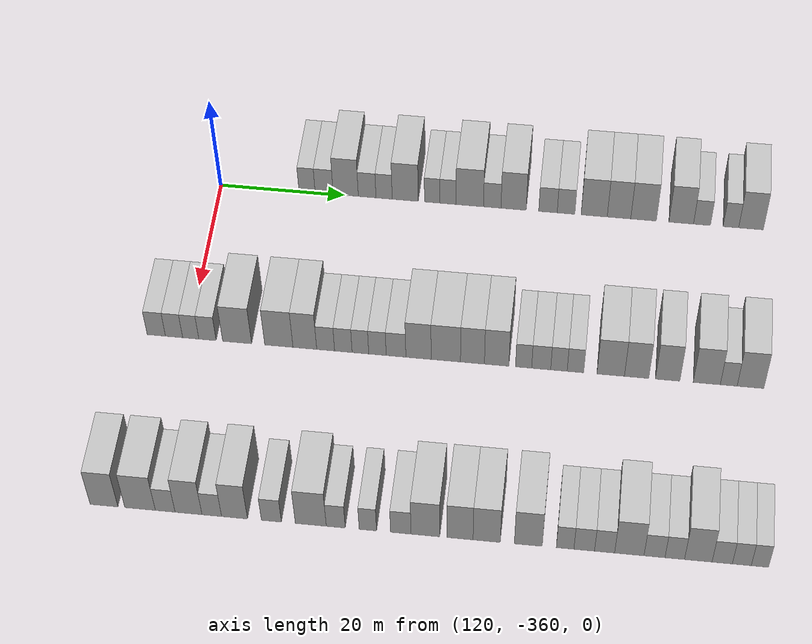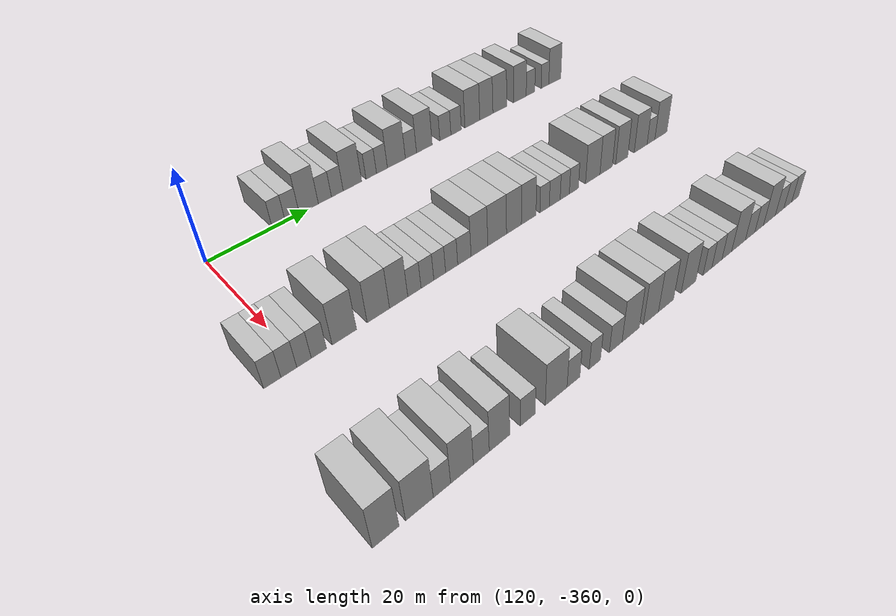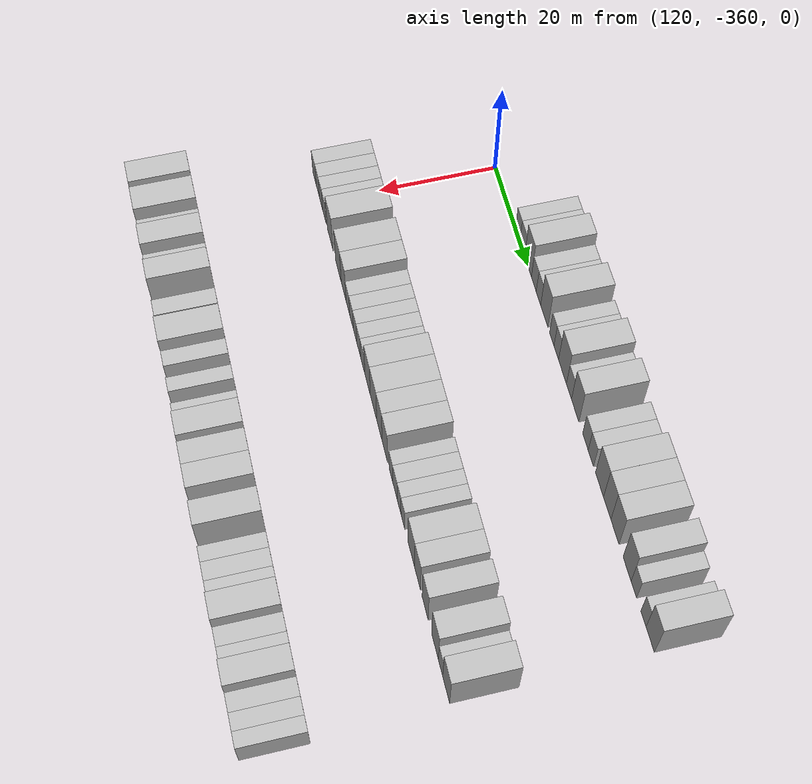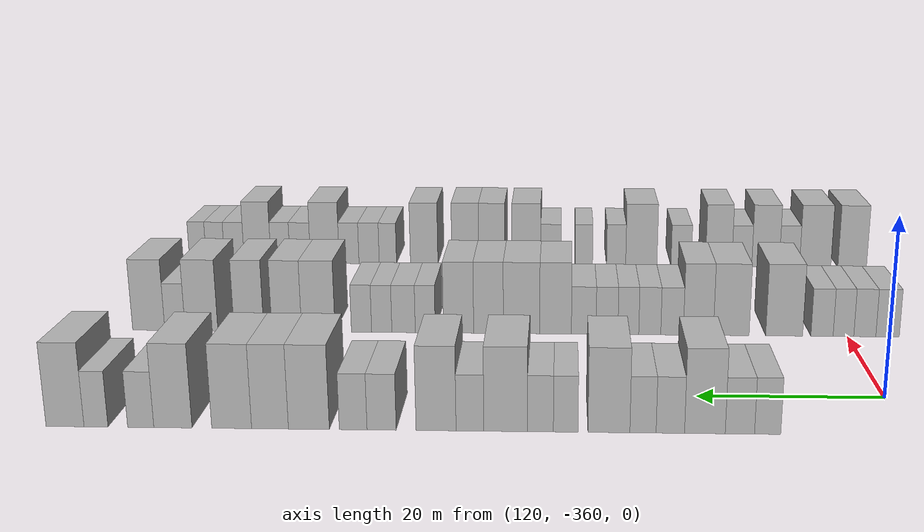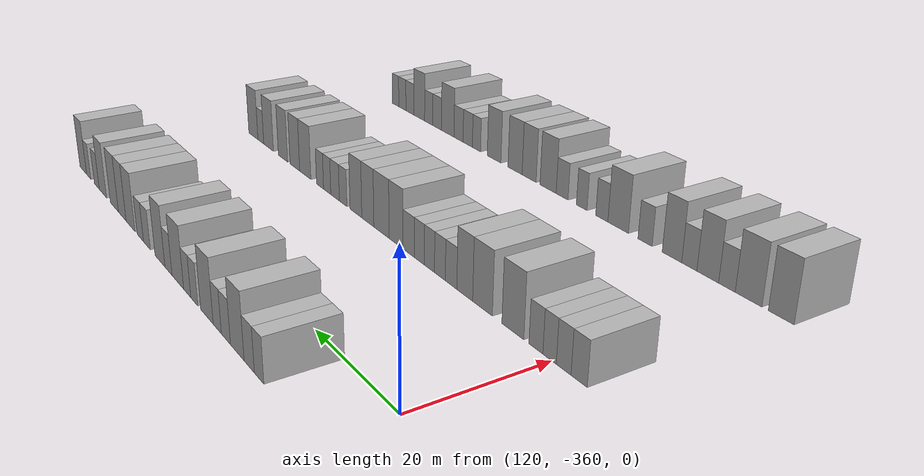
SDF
<sdf version="1.6">
 <world name="default">
  <model name="building_709">
   <static>1</static>
   <pose>115.0000 -346.1007 0 0.000000 0.000000 0.000000</pose>
   <link name="link">
    <pose>0 0 3.00 0 0 0</pose>
    <collision name="collision"><geometry><box><size>10.0000 2.6089 6.0000</size></box></geometry></collision>
    <visual name="visual">
     <cast_shadows>0</cast_shadows>
     <geometry><box><size>10.0000 2.6089 6.0000</size></box></geometry>
     <material>
      <script>
       <uri>model://HANNAS_wall/materials/scripts</uri>
       <uri>model://HANNAS_wall/materials/textures</uri>
       <name>vrc/HANNAS_wall</name>
      </script>
     </material>
    </visual>
   </link>
  </model>
  <model name="building_710">
   <static>1</static>
   <pose>115.0000 -343.3391 0 0.000000 0.000000 0.000000</pose>
   <link name="link">
    <pose>0 0 3.00 0 0 0</pose>
    <collision name="collision"><geometry><box><size>10.0000 2.9144 6.0000</size></box></geometry></collision>
    <visual name="visual">
     <cast_shadows>0</cast_shadows>
     <geometry><box><size>10.0000 2.9144 6.0000</size></box></geometry>
     <material>
      <script>
       <uri>model://HANNAS_wall/materials/scripts</uri>
       <uri>model://HANNAS_wall/materials/textures</uri>
       <name>vrc/HANNAS_wall</name>
      </script>
     </material>
    </visual>
   </link>
  </model>
  <model name="building_711">
   <static>1</static>
   <pose>115.0000 -339.8553 0 0.000000 0.000000 0.000000</pose>
   <link name="link">
    <pose>0 0 4.50 0 0 0</pose>
    <collision name="collision"><geometry><box><size>10.0000 4.0534 9.0000</size></box></geometry></collision>
    <visual name="visual">
     <cast_shadows>0</cast_shadows>
     <geometry><box><size>10.0000 4.0534 9.0000</size></box></geometry>
     <material>
      <script>
       <uri>model://HANNAS_wall/materials/scripts</uri>
       <uri>model://HANNAS_wall/materials/textures</uri>
       <name>vrc/HANNAS_wall</name>
      </script>
     </material>
    </visual>
   </link>
  </model>
  <model name="building_712">
   <static>1</static>
   <pose>115.0000 -336.4097 0 0.000000 0.000000 0.000000</pose>
   <link name="link">
    <pose>0 0 3.00 0 0 0</pose>
    <collision name="collision"><geometry><box><size>10.0000 2.8378 6.0000</size></box></geometry></collision>
    <visual name="visual">
     <cast_shadows>0</cast_shadows>
     <geometry><box><size>10.0000 2.8378 6.0000</size></box></geometry>
     <material>
      <script>
       <uri>model://HANNAS_wall/materials/scripts</uri>
       <uri>model://HANNAS_wall/materials/textures</uri>
       <name>vrc/HANNAS_wall</name>
      </script>
     </material>
    </visual>
   </link>
  </model>
  <model name="building_713">
   <static>1</static>
   <pose>115.0000 -333.6820 0 0.000000 0.000000 0.000000</pose>
   <link name="link">
    <pose>0 0 3.00 0 0 0</pose>
    <collision name="collision"><geometry><box><size>10.0000 2.6175 6.0000</size></box></geometry></collision>
    <visual name="visual">
     <cast_shadows>0</cast_shadows>
     <geometry><box><size>10.0000 2.6175 6.0000</size></box></geometry>
     <material>
      <script>
       <uri>model://HANNAS_wall/materials/scripts</uri>
       <uri>model://HANNAS_wall/materials/textures</uri>
       <name>vrc/HANNAS_wall</name>
      </script>
     </material>
    </visual>
   </link>
  </model>
  <model name="building_714">
   <static>1</static>
   <pose>115.0000 -330.2794 0 0.000000 0.000000 0.000000</pose>
   <link name="link">
    <pose>0 0 4.50 0 0 0</pose>
    <collision name="collision"><geometry><box><size>10.0000 4.1876 9.0000</size></box></geometry></collision>
    <visual name="visual">
     <cast_shadows>0</cast_shadows>
     <geometry><box><size>10.0000 4.1876 9.0000</size></box></geometry>
     <material>
      <script>
       <uri>model://HANNAS_wall/materials/scripts</uri>
       <uri>model://HANNAS_wall/materials/textures</uri>
       <name>vrc/HANNAS_wall</name>
      </script>
     </material>
    </visual>
   </link>
  </model>
  <model name="building_715">
   <static>1</static>
   <pose>115.0000 -325.9522 0 0.000000 0.000000 0.000000</pose>
   <link name="link">
    <pose>0 0 3.00 0 0 0</pose>
    <collision name="collision"><geometry><box><size>10.0000 2.4670 6.0000</size></box></geometry></collision>
    <visual name="visual">
     <cast_shadows>0</cast_shadows>
     <geometry><box><size>10.0000 2.4670 6.0000</size></box></geometry>
     <material>
      <script>
       <uri>model://HANNAS_wall/materials/scripts</uri>
       <uri>model://HANNAS_wall/materials/textures</uri>
       <name>vrc/HANNAS_wall</name>
      </script>
     </material>
    </visual>
   </link>
  </model>
  <model name="building_716">
   <static>1</static>
   <pose>115.0000 -323.4235 0 0.000000 0.000000 0.000000</pose>
   <link name="link">
    <pose>0 0 3.00 0 0 0</pose>
    <collision name="collision"><geometry><box><size>10.0000 2.5903 6.0000</size></box></geometry></collision>
    <visual name="visual">
     <cast_shadows>0</cast_shadows>
     <geometry><box><size>10.0000 2.5903 6.0000</size></box></geometry>
     <material>
      <script>
       <uri>model://HANNAS_wall/materials/scripts</uri>
       <uri>model://HANNAS_wall/materials/textures</uri>
       <name>vrc/HANNAS_wall</name>
      </script>
     </material>
    </visual>
   </link>
  </model>
  <model name="building_717">
   <static>1</static>
   <pose>115.0000 -319.9358 0 0.000000 0.000000 0.000000</pose>
   <link name="link">
    <pose>0 0 4.50 0 0 0</pose>
    <collision name="collision"><geometry><box><size>10.0000 4.3851 9.0000</size></box></geometry></collision>
    <visual name="visual">
     <cast_shadows>0</cast_shadows>
     <geometry><box><size>10.0000 4.3851 9.0000</size></box></geometry>
     <material>
      <script>
       <uri>model://HANNAS_wall/materials/scripts</uri>
       <uri>model://HANNAS_wall/materials/textures</uri>
       <name>vrc/HANNAS_wall</name>
      </script>
     </material>
    </visual>
   </link>
  </model>
  <model name="building_718">
   <static>1</static>
   <pose>115.0000 -316.3467 0 0.000000 0.000000 0.000000</pose>
   <link name="link">
    <pose>0 0 3.00 0 0 0</pose>
    <collision name="collision"><geometry><box><size>10.0000 2.7930 6.0000</size></box></geometry></collision>
    <visual name="visual">
     <cast_shadows>0</cast_shadows>
     <geometry><box><size>10.0000 2.7930 6.0000</size></box></geometry>
     <material>
      <script>
       <uri>model://HANNAS_wall/materials/scripts</uri>
       <uri>model://HANNAS_wall/materials/textures</uri>
       <name>vrc/HANNAS_wall</name>
      </script>
     </material>
    </visual>
   </link>
  </model>
  <model name="building_719">
   <static>1</static>
   <pose>115.0000 -312.9369 0 0.000000 0.000000 0.000000</pose>
   <link name="link">
    <pose>0 0 4.50 0 0 0</pose>
    <collision name="collision"><geometry><box><size>10.0000 4.0266 9.0000</size></box></geometry></collision>
    <visual name="visual">
     <cast_shadows>0</cast_shadows>
     <geometry><box><size>10.0000 4.0266 9.0000</size></box></geometry>
     <material>
      <script>
       <uri>model://HANNAS_wall/materials/scripts</uri>
       <uri>model://HANNAS_wall/materials/textures</uri>
       <name>vrc/HANNAS_wall</name>
      </script>
     </material>
    </visual>
   </link>
  </model>
  <model name="building_720">
   <static>1</static>
   <pose>115.0000 -307.4509 0 0.000000 0.000000 0.000000</pose>
   <link name="link">
    <pose>0 0 3.00 0 0 0</pose>
    <collision name="collision"><geometry><box><size>10.0000 2.9455 6.0000</size></box></geometry></collision>
    <visual name="visual">
     <cast_shadows>0</cast_shadows>
     <geometry><box><size>10.0000 2.9455 6.0000</size></box></geometry>
     <material>
      <script>
       <uri>model://HANNAS_wall/materials/scripts</uri>
       <uri>model://HANNAS_wall/materials/textures</uri>
       <name>vrc/HANNAS_wall</name>
      </script>
     </material>
    </visual>
   </link>
  </model>
  <model name="building_721">
   <static>1</static>
   <pose>115.0000 -304.5764 0 0.000000 0.000000 0.000000</pose>
   <link name="link">
    <pose>0 0 3.00 0 0 0</pose>
    <collision name="collision"><geometry><box><size>10.0000 2.8035 6.0000</size></box></geometry></collision>
    <visual name="visual">
     <cast_shadows>0</cast_shadows>
     <geometry><box><size>10.0000 2.8035 6.0000</size></box></geometry>
     <material>
      <script>
       <uri>model://HANNAS_wall/materials/scripts</uri>
       <uri>model://HANNAS_wall/materials/textures</uri>
       <name>vrc/HANNAS_wall</name>
      </script>
     </material>
    </visual>
   </link>
  </model>
  <model name="building_722">
   <static>1</static>
   <pose>115.0000 -300.1030 0 0.000000 0.000000 0.000000</pose>
   <link name="link">
    <pose>0 0 4.50 0 0 0</pose>
    <collision name="collision"><geometry><box><size>10.0000 4.1432 9.0000</size></box></geometry></collision>
    <visual name="visual">
     <cast_shadows>0</cast_shadows>
     <geometry><box><size>10.0000 4.1432 9.0000</size></box></geometry>
     <material>
      <script>
       <uri>model://HANNAS_wall/materials/scripts</uri>
       <uri>model://HANNAS_wall/materials/textures</uri>
       <name>vrc/HANNAS_wall</name>
      </script>
     </material>
    </visual>
   </link>
  </model>
  <model name="building_723">
   <static>1</static>
   <pose>115.0000 -296.1657 0 0.000000 0.000000 0.000000</pose>
   <link name="link">
    <pose>0 0 4.50 0 0 0</pose>
    <collision name="collision"><geometry><box><size>10.0000 3.7313 9.0000</size></box></geometry></collision>
    <visual name="visual">
     <cast_shadows>0</cast_shadows>
     <geometry><box><size>10.0000 3.7313 9.0000</size></box></geometry>
     <material>
      <script>
       <uri>model://HANNAS_wall/materials/scripts</uri>
       <uri>model://HANNAS_wall/materials/textures</uri>
       <name>vrc/HANNAS_wall</name>
      </script>
     </material>
    </visual>
   </link>
  </model>
  <model name="building_724">
   <static>1</static>
   <pose>115.0000 -292.2771 0 0.000000 0.000000 0.000000</pose>
   <link name="link">
    <pose>0 0 4.50 0 0 0</pose>
    <collision name="collision"><geometry><box><size>10.0000 4.0459 9.0000</size></box></geometry></collision>
    <visual name="visual">
     <cast_shadows>0</cast_shadows>
     <geometry><box><size>10.0000 4.0459 9.0000</size></box></geometry>
     <material>
      <script>
       <uri>model://HANNAS_wall/materials/scripts</uri>
       <uri>model://HANNAS_wall/materials/textures</uri>
       <name>vrc/HANNAS_wall</name>
      </script>
     </material>
    </visual>
   </link>
  </model>
  <model name="building_725">
   <static>1</static>
   <pose>115.0000 -286.3093 0 0.000000 0.000000 0.000000</pose>
   <link name="link">
    <pose>0 0 4.50 0 0 0</pose>
    <collision name="collision"><geometry><box><size>10.0000 3.8897 9.0000</size></box></geometry></collision>
    <visual name="visual">
     <cast_shadows>0</cast_shadows>
     <geometry><box><size>10.0000 3.8897 9.0000</size></box></geometry>
     <material>
      <script>
       <uri>model://HANNAS_wall/materials/scripts</uri>
       <uri>model://HANNAS_wall/materials/textures</uri>
       <name>vrc/HANNAS_wall</name>
      </script>
     </material>
    </visual>
   </link>
  </model>
  <model name="building_726">
   <static>1</static>
   <pose>115.0000 -283.0308 0 0.000000 0.000000 0.000000</pose>
   <link name="link">
    <pose>0 0 3.00 0 0 0</pose>
    <collision name="collision"><geometry><box><size>10.0000 2.6674 6.0000</size></box></geometry></collision>
    <visual name="visual">
     <cast_shadows>0</cast_shadows>
     <geometry><box><size>10.0000 2.6674 6.0000</size></box></geometry>
     <material>
      <script>
       <uri>model://HANNAS_wall/materials/scripts</uri>
       <uri>model://HANNAS_wall/materials/textures</uri>
       <name>vrc/HANNAS_wall</name>
      </script>
     </material>
    </visual>
   </link>
  </model>
  <model name="building_727">
   <static>1</static>
   <pose>115.0000 -278.4740 0 0.000000 0.000000 0.000000</pose>
   <link name="link">
    <pose>0 0 3.00 0 0 0</pose>
    <collision name="collision"><geometry><box><size>10.0000 2.4462 6.0000</size></box></geometry></collision>
    <visual name="visual">
     <cast_shadows>0</cast_shadows>
     <geometry><box><size>10.0000 2.4462 6.0000</size></box></geometry>
     <material>
      <script>
       <uri>model://HANNAS_wall/materials/scripts</uri>
       <uri>model://HANNAS_wall/materials/textures</uri>
       <name>vrc/HANNAS_wall</name>
      </script>
     </material>
    </visual>
   </link>
  </model>
  <model name="building_728">
   <static>1</static>
   <pose>115.0000 -275.3124 0 0.000000 0.000000 0.000000</pose>
   <link name="link">
    <pose>0 0 4.50 0 0 0</pose>
    <collision name="collision"><geometry><box><size>10.0000 3.8770 9.0000</size></box></geometry></collision>
    <visual name="visual">
     <cast_shadows>0</cast_shadows>
     <geometry><box><size>10.0000 3.8770 9.0000</size></box></geometry>
     <material>
      <script>
       <uri>model://HANNAS_wall/materials/scripts</uri>
       <uri>model://HANNAS_wall/materials/textures</uri>
       <name>vrc/HANNAS_wall</name>
      </script>
     </material>
    </visual>
   </link>
  </model>
  <model name="building_920">
   <static>1</static>
   <pose>145.0000 -364.8255 0 0.000000 0.000000 0.000000</pose>
   <link name="link">
    <pose>0 0 3.00 0 0 0</pose>
    <collision name="collision"><geometry><box><size>10.0000 2.8186 6.0000</size></box></geometry></collision>
    <visual name="visual">
     <cast_shadows>0</cast_shadows>
     <geometry><box><size>10.0000 2.8186 6.0000</size></box></geometry>
     <material>
      <script>
       <uri>model://HANNAS_wall/materials/scripts</uri>
       <uri>model://HANNAS_wall/materials/textures</uri>
       <name>vrc/HANNAS_wall</name>
      </script>
     </material>
    </visual>
   </link>
  </model>
  <model name="building_921">
   <static>1</static>
   <pose>145.0000 -362.0936 0 0.000000 0.000000 0.000000</pose>
   <link name="link">
    <pose>0 0 3.00 0 0 0</pose>
    <collision name="collision"><geometry><box><size>10.0000 2.6452 6.0000</size></box></geometry></collision>
    <visual name="visual">
     <cast_shadows>0</cast_shadows>
     <geometry><box><size>10.0000 2.6452 6.0000</size></box></geometry>
     <material>
      <script>
       <uri>model://HANNAS_wall/materials/scripts</uri>
       <uri>model://HANNAS_wall/materials/textures</uri>
       <name>vrc/HANNAS_wall</name>
      </script>
     </material>
    </visual>
   </link>
  </model>
  <model name="building_922">
   <static>1</static>
   <pose>145.0000 -359.5289 0 0.000000 0.000000 0.000000</pose>
   <link name="link">
    <pose>0 0 3.00 0 0 0</pose>
    <collision name="collision"><geometry><box><size>10.0000 2.4841 6.0000</size></box></geometry></collision>
    <visual name="visual">
     <cast_shadows>0</cast_shadows>
     <geometry><box><size>10.0000 2.4841 6.0000</size></box></geometry>
     <material>
      <script>
       <uri>model://HANNAS_wall/materials/scripts</uri>
       <uri>model://HANNAS_wall/materials/textures</uri>
       <name>vrc/HANNAS_wall</name>
      </script>
     </material>
    </visual>
   </link>
  </model>
  <model name="building_923">
   <static>1</static>
   <pose>145.0000 -356.9536 0 0.000000 0.000000 0.000000</pose>
   <link name="link">
    <pose>0 0 3.00 0 0 0</pose>
    <collision name="collision"><geometry><box><size>10.0000 2.6666 6.0000</size></box></geometry></collision>
    <visual name="visual">
     <cast_shadows>0</cast_shadows>
     <geometry><box><size>10.0000 2.6666 6.0000</size></box></geometry>
     <material>
      <script>
       <uri>model://HANNAS_wall/materials/scripts</uri>
       <uri>model://HANNAS_wall/materials/textures</uri>
       <name>vrc/HANNAS_wall</name>
      </script>
     </material>
    </visual>
   </link>
  </model>
  <model name="building_924">
   <static>1</static>
   <pose>145.0000 -352.3959 0 0.000000 0.000000 0.000000</pose>
   <link name="link">
    <pose>0 0 4.50 0 0 0</pose>
    <collision name="collision"><geometry><box><size>10.0000 4.4488 9.0000</size></box></geometry></collision>
    <visual name="visual">
     <cast_shadows>0</cast_shadows>
     <geometry><box><size>10.0000 4.4488 9.0000</size></box></geometry>
     <material>
      <script>
       <uri>model://HANNAS_wall/materials/scripts</uri>
       <uri>model://HANNAS_wall/materials/textures</uri>
       <name>vrc/HANNAS_wall</name>
      </script>
     </material>
    </visual>
   </link>
  </model>
  <model name="building_925">
   <static>1</static>
   <pose>145.0000 -346.0116 0 0.000000 0.000000 0.000000</pose>
   <link name="link">
    <pose>0 0 4.50 0 0 0</pose>
    <collision name="collision"><geometry><box><size>10.0000 4.3199 9.0000</size></box></geometry></collision>
    <visual name="visual">
     <cast_shadows>0</cast_shadows>
     <geometry><box><size>10.0000 4.3199 9.0000</size></box></geometry>
     <material>
      <script>
       <uri>model://HANNAS_wall/materials/scripts</uri>
       <uri>model://HANNAS_wall/materials/textures</uri>
       <name>vrc/HANNAS_wall</name>
      </script>
     </material>
    </visual>
   </link>
  </model>
  <model name="building_926">
   <static>1</static>
   <pose>145.0000 -342.0381 0 0.000000 0.000000 0.000000</pose>
   <link name="link">
    <pose>0 0 4.50 0 0 0</pose>
    <collision name="collision"><geometry><box><size>10.0000 3.6271 9.0000</size></box></geometry></collision>
    <visual name="visual">
     <cast_shadows>0</cast_shadows>
     <geometry><box><size>10.0000 3.6271 9.0000</size></box></geometry>
     <material>
      <script>
       <uri>model://HANNAS_wall/materials/scripts</uri>
       <uri>model://HANNAS_wall/materials/textures</uri>
       <name>vrc/HANNAS_wall</name>
      </script>
     </material>
    </visual>
   </link>
  </model>
  <model name="building_927">
   <static>1</static>
   <pose>145.0000 -338.8602 0 0.000000 0.000000 0.000000</pose>
   <link name="link">
    <pose>0 0 3.00 0 0 0</pose>
    <collision name="collision"><geometry><box><size>10.0000 2.7285 6.0000</size></box></geometry></collision>
    <visual name="visual">
     <cast_shadows>0</cast_shadows>
     <geometry><box><size>10.0000 2.7285 6.0000</size></box></geometry>
     <material>
      <script>
       <uri>model://HANNAS_wall/materials/scripts</uri>
       <uri>model://HANNAS_wall/materials/textures</uri>
       <name>vrc/HANNAS_wall</name>
      </script>
     </material>
    </visual>
   </link>
  </model>
  <model name="building_928">
   <static>1</static>
   <pose>145.0000 -336.1619 0 0.000000 0.000000 0.000000</pose>
   <link name="link">
    <pose>0 0 3.00 0 0 0</pose>
    <collision name="collision"><geometry><box><size>10.0000 2.6682 6.0000</size></box></geometry></collision>
    <visual name="visual">
     <cast_shadows>0</cast_shadows>
     <geometry><box><size>10.0000 2.6682 6.0000</size></box></geometry>
     <material>
      <script>
       <uri>model://HANNAS_wall/materials/scripts</uri>
       <uri>model://HANNAS_wall/materials/textures</uri>
       <name>vrc/HANNAS_wall</name>
      </script>
     </material>
    </visual>
   </link>
  </model>
  <model name="building_929">
   <static>1</static>
   <pose>145.0000 -333.5657 0 0.000000 0.000000 0.000000</pose>
   <link name="link">
    <pose>0 0 3.00 0 0 0</pose>
    <collision name="collision"><geometry><box><size>10.0000 2.5242 6.0000</size></box></geometry></collision>
    <visual name="visual">
     <cast_shadows>0</cast_shadows>
     <geometry><box><size>10.0000 2.5242 6.0000</size></box></geometry>
     <material>
      <script>
       <uri>model://HANNAS_wall/materials/scripts</uri>
       <uri>model://HANNAS_wall/materials/textures</uri>
       <name>vrc/HANNAS_wall</name>
      </script>
     </material>
    </visual>
   </link>
  </model>
  <model name="building_930">
   <static>1</static>
   <pose>145.0000 -330.9771 0 0.000000 0.000000 0.000000</pose>
   <link name="link">
    <pose>0 0 3.00 0 0 0</pose>
    <collision name="collision"><geometry><box><size>10.0000 2.6528 6.0000</size></box></geometry></collision>
    <visual name="visual">
     <cast_shadows>0</cast_shadows>
     <geometry><box><size>10.0000 2.6528 6.0000</size></box></geometry>
     <material>
      <script>
       <uri>model://HANNAS_wall/materials/scripts</uri>
       <uri>model://HANNAS_wall/materials/textures</uri>
       <name>vrc/HANNAS_wall</name>
      </script>
     </material>
    </visual>
   </link>
  </model>
  <model name="building_931">
   <static>1</static>
   <pose>145.0000 -328.1550 0 0.000000 0.000000 0.000000</pose>
   <link name="link">
    <pose>0 0 3.00 0 0 0</pose>
    <collision name="collision"><geometry><box><size>10.0000 2.9915 6.0000</size></box></geometry></collision>
    <visual name="visual">
     <cast_shadows>0</cast_shadows>
     <geometry><box><size>10.0000 2.9915 6.0000</size></box></geometry>
     <material>
      <script>
       <uri>model://HANNAS_wall/materials/scripts</uri>
       <uri>model://HANNAS_wall/materials/textures</uri>
       <name>vrc/HANNAS_wall</name>
      </script>
     </material>
    </visual>
   </link>
  </model>
  <model name="building_932">
   <static>1</static>
   <pose>145.0000 -324.7396 0 0.000000 0.000000 0.000000</pose>
   <link name="link">
    <pose>0 0 4.50 0 0 0</pose>
    <collision name="collision"><geometry><box><size>10.0000 3.8392 9.0000</size></box></geometry></collision>
    <visual name="visual">
     <cast_shadows>0</cast_shadows>
     <geometry><box><size>10.0000 3.8392 9.0000</size></box></geometry>
     <material>
      <script>
       <uri>model://HANNAS_wall/materials/scripts</uri>
       <uri>model://HANNAS_wall/materials/textures</uri>
       <name>vrc/HANNAS_wall</name>
      </script>
     </material>
    </visual>
   </link>
  </model>
  <model name="building_933">
   <static>1</static>
   <pose>145.0000 -320.6059 0 0.000000 0.000000 0.000000</pose>
   <link name="link">
    <pose>0 0 4.50 0 0 0</pose>
    <collision name="collision"><geometry><box><size>10.0000 4.4284 9.0000</size></box></geometry></collision>
    <visual name="visual">
     <cast_shadows>0</cast_shadows>
     <geometry><box><size>10.0000 4.4284 9.0000</size></box></geometry>
     <material>
      <script>
       <uri>model://HANNAS_wall/materials/scripts</uri>
       <uri>model://HANNAS_wall/materials/textures</uri>
       <name>vrc/HANNAS_wall</name>
      </script>
     </material>
    </visual>
   </link>
  </model>
  <model name="building_934">
   <static>1</static>
   <pose>145.0000 -316.5804 0 0.000000 0.000000 0.000000</pose>
   <link name="link">
    <pose>0 0 4.50 0 0 0</pose>
    <collision name="collision"><geometry><box><size>10.0000 3.6226 9.0000</size></box></geometry></collision>
    <visual name="visual">
     <cast_shadows>0</cast_shadows>
     <geometry><box><size>10.0000 3.6226 9.0000</size></box></geometry>
     <material>
      <script>
       <uri>model://HANNAS_wall/materials/scripts</uri>
       <uri>model://HANNAS_wall/materials/textures</uri>
       <name>vrc/HANNAS_wall</name>
      </script>
     </material>
    </visual>
   </link>
  </model>
  <model name="building_935">
   <static>1</static>
   <pose>145.0000 -312.9247 0 0.000000 0.000000 0.000000</pose>
   <link name="link">
    <pose>0 0 4.50 0 0 0</pose>
    <collision name="collision"><geometry><box><size>10.0000 3.6887 9.0000</size></box></geometry></collision>
    <visual name="visual">
     <cast_shadows>0</cast_shadows>
     <geometry><box><size>10.0000 3.6887 9.0000</size></box></geometry>
     <material>
      <script>
       <uri>model://HANNAS_wall/materials/scripts</uri>
       <uri>model://HANNAS_wall/materials/textures</uri>
       <name>vrc/HANNAS_wall</name>
      </script>
     </material>
    </visual>
   </link>
  </model>
  <model name="building_936">
   <static>1</static>
   <pose>145.0000 -308.8634 0 0.000000 0.000000 0.000000</pose>
   <link name="link">
    <pose>0 0 3.00 0 0 0</pose>
    <collision name="collision"><geometry><box><size>10.0000 2.4340 6.0000</size></box></geometry></collision>
    <visual name="visual">
     <cast_shadows>0</cast_shadows>
     <geometry><box><size>10.0000 2.4340 6.0000</size></box></geometry>
     <material>
      <script>
       <uri>model://HANNAS_wall/materials/scripts</uri>
       <uri>model://HANNAS_wall/materials/textures</uri>
       <name>vrc/HANNAS_wall</name>
      </script>
     </material>
    </visual>
   </link>
  </model>
  <model name="building_937">
   <static>1</static>
   <pose>145.0000 -306.2151 0 0.000000 0.000000 0.000000</pose>
   <link name="link">
    <pose>0 0 3.00 0 0 0</pose>
    <collision name="collision"><geometry><box><size>10.0000 2.8625 6.0000</size></box></geometry></collision>
    <visual name="visual">
     <cast_shadows>0</cast_shadows>
     <geometry><box><size>10.0000 2.8625 6.0000</size></box></geometry>
     <material>
      <script>
       <uri>model://HANNAS_wall/materials/scripts</uri>
       <uri>model://HANNAS_wall/materials/textures</uri>
       <name>vrc/HANNAS_wall</name>
      </script>
     </material>
    </visual>
   </link>
  </model>
  <model name="building_938">
   <static>1</static>
   <pose>145.0000 -303.5458 0 0.000000 0.000000 0.000000</pose>
   <link name="link">
    <pose>0 0 3.00 0 0 0</pose>
    <collision name="collision"><geometry><box><size>10.0000 2.4761 6.0000</size></box></geometry></collision>
    <visual name="visual">
     <cast_shadows>0</cast_shadows>
     <geometry><box><size>10.0000 2.4761 6.0000</size></box></geometry>
     <material>
      <script>
       <uri>model://HANNAS_wall/materials/scripts</uri>
       <uri>model://HANNAS_wall/materials/textures</uri>
       <name>vrc/HANNAS_wall</name>
      </script>
     </material>
    </visual>
   </link>
  </model>
  <model name="building_939">
   <static>1</static>
   <pose>145.0000 -301.0692 0 0.000000 0.000000 0.000000</pose>
   <link name="link">
    <pose>0 0 3.00 0 0 0</pose>
    <collision name="collision"><geometry><box><size>10.0000 2.4772 6.0000</size></box></geometry></collision>
    <visual name="visual">
     <cast_shadows>0</cast_shadows>
     <geometry><box><size>10.0000 2.4772 6.0000</size></box></geometry>
     <material>
      <script>
       <uri>model://HANNAS_wall/materials/scripts</uri>
       <uri>model://HANNAS_wall/materials/textures</uri>
       <name>vrc/HANNAS_wall</name>
      </script>
     </material>
    </visual>
   </link>
  </model>
  <model name="building_940">
   <static>1</static>
   <pose>145.0000 -295.7736 0 0.000000 0.000000 0.000000</pose>
   <link name="link">
    <pose>0 0 4.50 0 0 0</pose>
    <collision name="collision"><geometry><box><size>10.0000 4.1140 9.0000</size></box></geometry></collision>
    <visual name="visual">
     <cast_shadows>0</cast_shadows>
     <geometry><box><size>10.0000 4.1140 9.0000</size></box></geometry>
     <material>
      <script>
       <uri>model://HANNAS_wall/materials/scripts</uri>
       <uri>model://HANNAS_wall/materials/textures</uri>
       <name>vrc/HANNAS_wall</name>
      </script>
     </material>
    </visual>
   </link>
  </model>
  <model name="building_941">
   <static>1</static>
   <pose>145.0000 -291.8958 0 0.000000 0.000000 0.000000</pose>
   <link name="link">
    <pose>0 0 4.50 0 0 0</pose>
    <collision name="collision"><geometry><box><size>10.0000 3.6417 9.0000</size></box></geometry></collision>
    <visual name="visual">
     <cast_shadows>0</cast_shadows>
     <geometry><box><size>10.0000 3.6417 9.0000</size></box></geometry>
     <material>
      <script>
       <uri>model://HANNAS_wall/materials/scripts</uri>
       <uri>model://HANNAS_wall/materials/textures</uri>
       <name>vrc/HANNAS_wall</name>
      </script>
     </material>
    </visual>
   </link>
  </model>
  <model name="building_942">
   <static>1</static>
   <pose>145.0000 -287.2514 0 0.000000 0.000000 0.000000</pose>
   <link name="link">
    <pose>0 0 4.50 0 0 0</pose>
    <collision name="collision"><geometry><box><size>10.0000 3.6470 9.0000</size></box></geometry></collision>
    <visual name="visual">
     <cast_shadows>0</cast_shadows>
     <geometry><box><size>10.0000 3.6470 9.0000</size></box></geometry>
     <material>
      <script>
       <uri>model://HANNAS_wall/materials/scripts</uri>
       <uri>model://HANNAS_wall/materials/textures</uri>
       <name>vrc/HANNAS_wall</name>
      </script>
     </material>
    </visual>
   </link>
  </model>
  <model name="building_943">
   <static>1</static>
   <pose>145.0000 -281.4106 0 0.000000 0.000000 0.000000</pose>
   <link name="link">
    <pose>0 0 4.50 0 0 0</pose>
    <collision name="collision"><geometry><box><size>10.0000 4.0347 9.0000</size></box></geometry></collision>
    <visual name="visual">
     <cast_shadows>0</cast_shadows>
     <geometry><box><size>10.0000 4.0347 9.0000</size></box></geometry>
     <material>
      <script>
       <uri>model://HANNAS_wall/materials/scripts</uri>
       <uri>model://HANNAS_wall/materials/textures</uri>
       <name>vrc/HANNAS_wall</name>
      </script>
     </material>
    </visual>
   </link>
  </model>
  <model name="building_944">
   <static>1</static>
   <pose>145.0000 -278.1406 0 0.000000 0.000000 0.000000</pose>
   <link name="link">
    <pose>0 0 3.00 0 0 0</pose>
    <collision name="collision"><geometry><box><size>10.0000 2.5053 6.0000</size></box></geometry></collision>
    <visual name="visual">
     <cast_shadows>0</cast_shadows>
     <geometry><box><size>10.0000 2.5053 6.0000</size></box></geometry>
     <material>
      <script>
       <uri>model://HANNAS_wall/materials/scripts</uri>
       <uri>model://HANNAS_wall/materials/textures</uri>
       <name>vrc/HANNAS_wall</name>
      </script>
     </material>
    </visual>
   </link>
  </model>
  <model name="building_945">
   <static>1</static>
   <pose>145.0000 -274.9038 0 0.000000 0.000000 0.000000</pose>
   <link name="link">
    <pose>0 0 4.50 0 0 0</pose>
    <collision name="collision"><geometry><box><size>10.0000 3.9682 9.0000</size></box></geometry></collision>
    <visual name="visual">
     <cast_shadows>0</cast_shadows>
     <geometry><box><size>10.0000 3.9682 9.0000</size></box></geometry>
     <material>
      <script>
       <uri>model://HANNAS_wall/materials/scripts</uri>
       <uri>model://HANNAS_wall/materials/textures</uri>
       <name>vrc/HANNAS_wall</name>
      </script>
     </material>
    </visual>
   </link>
  </model>
  <model name="building_1150">
   <static>1</static>
   <pose>175.0000 -366.6681 0 0.000000 0.000000 0.000000</pose>
   <link name="link">
    <pose>0 0 4.50 0 0 0</pose>
    <collision name="collision"><geometry><box><size>10.0000 4.0423 9.0000</size></box></geometry></collision>
    <visual name="visual">
     <cast_shadows>0</cast_shadows>
     <geometry><box><size>10.0000 4.0423 9.0000</size></box></geometry>
     <material>
      <script>
       <uri>model://HANNAS_wall/materials/scripts</uri>
       <uri>model://HANNAS_wall/materials/textures</uri>
       <name>vrc/HANNAS_wall</name>
      </script>
     </material>
    </visual>
   </link>
  </model>
  <model name="building_1151">
   <static>1</static>
   <pose>175.0000 -361.4323 0 0.000000 0.000000 0.000000</pose>
   <link name="link">
    <pose>0 0 4.50 0 0 0</pose>
    <collision name="collision"><geometry><box><size>10.0000 4.4293 9.0000</size></box></geometry></collision>
    <visual name="visual">
     <cast_shadows>0</cast_shadows>
     <geometry><box><size>10.0000 4.4293 9.0000</size></box></geometry>
     <material>
      <script>
       <uri>model://HANNAS_wall/materials/scripts</uri>
       <uri>model://HANNAS_wall/materials/textures</uri>
       <name>vrc/HANNAS_wall</name>
      </script>
     </material>
    </visual>
   </link>
  </model>
  <model name="building_1152">
   <static>1</static>
   <pose>175.0000 -357.7847 0 0.000000 0.000000 0.000000</pose>
   <link name="link">
    <pose>0 0 3.00 0 0 0</pose>
    <collision name="collision"><geometry><box><size>10.0000 2.8658 6.0000</size></box></geometry></collision>
    <visual name="visual">
     <cast_shadows>0</cast_shadows>
     <geometry><box><size>10.0000 2.8658 6.0000</size></box></geometry>
     <material>
      <script>
       <uri>model://HANNAS_wall/materials/scripts</uri>
       <uri>model://HANNAS_wall/materials/textures</uri>
       <name>vrc/HANNAS_wall</name>
      </script>
     </material>
    </visual>
   </link>
  </model>
  <model name="building_1153">
   <static>1</static>
   <pose>175.0000 -354.4031 0 0.000000 0.000000 0.000000</pose>
   <link name="link">
    <pose>0 0 4.50 0 0 0</pose>
    <collision name="collision"><geometry><box><size>10.0000 3.8973 9.0000</size></box></geometry></collision>
    <visual name="visual">
     <cast_shadows>0</cast_shadows>
     <geometry><box><size>10.0000 3.8973 9.0000</size></box></geometry>
     <material>
      <script>
       <uri>model://HANNAS_wall/materials/scripts</uri>
       <uri>model://HANNAS_wall/materials/textures</uri>
       <name>vrc/HANNAS_wall</name>
      </script>
     </material>
    </visual>
   </link>
  </model>
  <model name="building_1154">
   <static>1</static>
   <pose>175.0000 -351.0383 0 0.000000 0.000000 0.000000</pose>
   <link name="link">
    <pose>0 0 3.00 0 0 0</pose>
    <collision name="collision"><geometry><box><size>10.0000 2.8323 6.0000</size></box></geometry></collision>
    <visual name="visual">
     <cast_shadows>0</cast_shadows>
     <geometry><box><size>10.0000 2.8323 6.0000</size></box></geometry>
     <material>
      <script>
       <uri>model://HANNAS_wall/materials/scripts</uri>
       <uri>model://HANNAS_wall/materials/textures</uri>
       <name>vrc/HANNAS_wall</name>
      </script>
     </material>
    </visual>
   </link>
  </model>
  <model name="building_1155">
   <static>1</static>
   <pose>175.0000 -347.7482 0 0.000000 0.000000 0.000000</pose>
   <link name="link">
    <pose>0 0 4.50 0 0 0</pose>
    <collision name="collision"><geometry><box><size>10.0000 3.7480 9.0000</size></box></geometry></collision>
    <visual name="visual">
     <cast_shadows>0</cast_shadows>
     <geometry><box><size>10.0000 3.7480 9.0000</size></box></geometry>
     <material>
      <script>
       <uri>model://HANNAS_wall/materials/scripts</uri>
       <uri>model://HANNAS_wall/materials/textures</uri>
       <name>vrc/HANNAS_wall</name>
      </script>
     </material>
    </visual>
   </link>
  </model>
  <model name="building_1156">
   <static>1</static>
   <pose>175.0000 -342.4302 0 0.000000 0.000000 0.000000</pose>
   <link name="link">
    <pose>0 0 3.00 0 0 0</pose>
    <collision name="collision"><geometry><box><size>10.0000 2.8880 6.0000</size></box></geometry></collision>
    <visual name="visual">
     <cast_shadows>0</cast_shadows>
     <geometry><box><size>10.0000 2.8880 6.0000</size></box></geometry>
     <material>
      <script>
       <uri>model://HANNAS_wall/materials/scripts</uri>
       <uri>model://HANNAS_wall/materials/textures</uri>
       <name>vrc/HANNAS_wall</name>
      </script>
     </material>
    </visual>
   </link>
  </model>
  <model name="building_1157">
   <static>1</static>
   <pose>175.0000 -336.7620 0 0.000000 0.000000 0.000000</pose>
   <link name="link">
    <pose>0 0 4.50 0 0 0</pose>
    <collision name="collision"><geometry><box><size>10.0000 4.4483 9.0000</size></box></geometry></collision>
    <visual name="visual">
     <cast_shadows>0</cast_shadows>
     <geometry><box><size>10.0000 4.4483 9.0000</size></box></geometry>
     <material>
      <script>
       <uri>model://HANNAS_wall/materials/scripts</uri>
       <uri>model://HANNAS_wall/materials/textures</uri>
       <name>vrc/HANNAS_wall</name>
      </script>
     </material>
    </visual>
   </link>
  </model>
  <model name="building_1158">
   <static>1</static>
   <pose>175.0000 -333.1767 0 0.000000 0.000000 0.000000</pose>
   <link name="link">
    <pose>0 0 3.00 0 0 0</pose>
    <collision name="collision"><geometry><box><size>10.0000 2.7223 6.0000</size></box></geometry></collision>
    <visual name="visual">
     <cast_shadows>0</cast_shadows>
     <geometry><box><size>10.0000 2.7223 6.0000</size></box></geometry>
     <material>
      <script>
       <uri>model://HANNAS_wall/materials/scripts</uri>
       <uri>model://HANNAS_wall/materials/textures</uri>
       <name>vrc/HANNAS_wall</name>
      </script>
     </material>
    </visual>
   </link>
  </model>
  <model name="building_1159">
   <static>1</static>
   <pose>175.0000 -328.5702 0 0.000000 0.000000 0.000000</pose>
   <link name="link">
    <pose>0 0 3.00 0 0 0</pose>
    <collision name="collision"><geometry><box><size>10.0000 2.4905 6.0000</size></box></geometry></collision>
    <visual name="visual">
     <cast_shadows>0</cast_shadows>
     <geometry><box><size>10.0000 2.4905 6.0000</size></box></geometry>
     <material>
      <script>
       <uri>model://HANNAS_wall/materials/scripts</uri>
       <uri>model://HANNAS_wall/materials/textures</uri>
       <name>vrc/HANNAS_wall</name>
      </script>
     </material>
    </visual>
   </link>
  </model>
  <model name="building_1160">
   <static>1</static>
   <pose>175.0000 -323.8622 0 0.000000 0.000000 0.000000</pose>
   <link name="link">
    <pose>0 0 3.00 0 0 0</pose>
    <collision name="collision"><geometry><box><size>10.0000 2.9257 6.0000</size></box></geometry></collision>
    <visual name="visual">
     <cast_shadows>0</cast_shadows>
     <geometry><box><size>10.0000 2.9257 6.0000</size></box></geometry>
     <material>
      <script>
       <uri>model://HANNAS_wall/materials/scripts</uri>
       <uri>model://HANNAS_wall/materials/textures</uri>
       <name>vrc/HANNAS_wall</name>
      </script>
     </material>
    </visual>
   </link>
  </model>
  <model name="building_1161">
   <static>1</static>
   <pose>175.0000 -320.3514 0 0.000000 0.000000 0.000000</pose>
   <link name="link">
    <pose>0 0 4.50 0 0 0</pose>
    <collision name="collision"><geometry><box><size>10.0000 4.0959 9.0000</size></box></geometry></collision>
    <visual name="visual">
     <cast_shadows>0</cast_shadows>
     <geometry><box><size>10.0000 4.0959 9.0000</size></box></geometry>
     <material>
      <script>
       <uri>model://HANNAS_wall/materials/scripts</uri>
       <uri>model://HANNAS_wall/materials/textures</uri>
       <name>vrc/HANNAS_wall</name>
      </script>
     </material>
    </visual>
   </link>
  </model>
  <model name="building_1162">
   <static>1</static>
   <pose>175.0000 -315.4326 0 0.000000 0.000000 0.000000</pose>
   <link name="link">
    <pose>0 0 4.50 0 0 0</pose>
    <collision name="collision"><geometry><box><size>10.0000 3.7415 9.0000</size></box></geometry></collision>
    <visual name="visual">
     <cast_shadows>0</cast_shadows>
     <geometry><box><size>10.0000 3.7415 9.0000</size></box></geometry>
     <material>
      <script>
       <uri>model://HANNAS_wall/materials/scripts</uri>
       <uri>model://HANNAS_wall/materials/textures</uri>
       <name>vrc/HANNAS_wall</name>
      </script>
     </material>
    </visual>
   </link>
  </model>
  <model name="building_1163">
   <static>1</static>
   <pose>175.0000 -311.6289 0 0.000000 0.000000 0.000000</pose>
   <link name="link">
    <pose>0 0 4.50 0 0 0</pose>
    <collision name="collision"><geometry><box><size>10.0000 3.8660 9.0000</size></box></geometry></collision>
    <visual name="visual">
     <cast_shadows>0</cast_shadows>
     <geometry><box><size>10.0000 3.8660 9.0000</size></box></geometry>
     <material>
      <script>
       <uri>model://HANNAS_wall/materials/scripts</uri>
       <uri>model://HANNAS_wall/materials/textures</uri>
       <name>vrc/HANNAS_wall</name>
      </script>
     </material>
    </visual>
   </link>
  </model>
  <model name="building_1164">
   <static>1</static>
   <pose>175.0000 -305.7202 0 0.000000 0.000000 0.000000</pose>
   <link name="link">
    <pose>0 0 4.50 0 0 0</pose>
    <collision name="collision"><geometry><box><size>10.0000 3.9514 9.0000</size></box></geometry></collision>
    <visual name="visual">
     <cast_shadows>0</cast_shadows>
     <geometry><box><size>10.0000 3.9514 9.0000</size></box></geometry>
     <material>
      <script>
       <uri>model://HANNAS_wall/materials/scripts</uri>
       <uri>model://HANNAS_wall/materials/textures</uri>
       <name>vrc/HANNAS_wall</name>
      </script>
     </material>
    </visual>
   </link>
  </model>
  <model name="building_1165">
   <static>1</static>
   <pose>175.0000 -300.5040 0 0.000000 0.000000 0.000000</pose>
   <link name="link">
    <pose>0 0 3.00 0 0 0</pose>
    <collision name="collision"><geometry><box><size>10.0000 2.4810 6.0000</size></box></geometry></collision>
    <visual name="visual">
     <cast_shadows>0</cast_shadows>
     <geometry><box><size>10.0000 2.4810 6.0000</size></box></geometry>
     <material>
      <script>
       <uri>model://HANNAS_wall/materials/scripts</uri>
       <uri>model://HANNAS_wall/materials/textures</uri>
       <name>vrc/HANNAS_wall</name>
      </script>
     </material>
    </visual>
   </link>
  </model>
  <model name="building_1166">
   <static>1</static>
   <pose>175.0000 -297.8061 0 0.000000 0.000000 0.000000</pose>
   <link name="link">
    <pose>0 0 3.00 0 0 0</pose>
    <collision name="collision"><geometry><box><size>10.0000 2.9149 6.0000</size></box></geometry></collision>
    <visual name="visual">
     <cast_shadows>0</cast_shadows>
     <geometry><box><size>10.0000 2.9149 6.0000</size></box></geometry>
     <material>
      <script>
       <uri>model://HANNAS_wall/materials/scripts</uri>
       <uri>model://HANNAS_wall/materials/textures</uri>
       <name>vrc/HANNAS_wall</name>
      </script>
     </material>
    </visual>
   </link>
  </model>
  <model name="building_1167">
   <static>1</static>
   <pose>175.0000 -294.9274 0 0.000000 0.000000 0.000000</pose>
   <link name="link">
    <pose>0 0 3.00 0 0 0</pose>
    <collision name="collision"><geometry><box><size>10.0000 2.8426 6.0000</size></box></geometry></collision>
    <visual name="visual">
     <cast_shadows>0</cast_shadows>
     <geometry><box><size>10.0000 2.8426 6.0000</size></box></geometry>
     <material>
      <script>
       <uri>model://HANNAS_wall/materials/scripts</uri>
       <uri>model://HANNAS_wall/materials/textures</uri>
       <name>vrc/HANNAS_wall</name>
      </script>
     </material>
    </visual>
   </link>
  </model>
  <model name="building_1168">
   <static>1</static>
   <pose>175.0000 -291.4361 0 0.000000 0.000000 0.000000</pose>
   <link name="link">
    <pose>0 0 4.50 0 0 0</pose>
    <collision name="collision"><geometry><box><size>10.0000 4.1401 9.0000</size></box></geometry></collision>
    <visual name="visual">
     <cast_shadows>0</cast_shadows>
     <geometry><box><size>10.0000 4.1401 9.0000</size></box></geometry>
     <material>
      <script>
       <uri>model://HANNAS_wall/materials/scripts</uri>
       <uri>model://HANNAS_wall/materials/textures</uri>
       <name>vrc/HANNAS_wall</name>
      </script>
     </material>
    </visual>
   </link>
  </model>
  <model name="building_1169">
   <static>1</static>
   <pose>175.0000 -287.8909 0 0.000000 0.000000 0.000000</pose>
   <link name="link">
    <pose>0 0 3.00 0 0 0</pose>
    <collision name="collision"><geometry><box><size>10.0000 2.9502 6.0000</size></box></geometry></collision>
    <visual name="visual">
     <cast_shadows>0</cast_shadows>
     <geometry><box><size>10.0000 2.9502 6.0000</size></box></geometry>
     <material>
      <script>
       <uri>model://HANNAS_wall/materials/scripts</uri>
       <uri>model://HANNAS_wall/materials/textures</uri>
       <name>vrc/HANNAS_wall</name>
      </script>
     </material>
    </visual>
   </link>
  </model>
  <model name="building_1170">
   <static>1</static>
   <pose>175.0000 -285.0422 0 0.000000 0.000000 0.000000</pose>
   <link name="link">
    <pose>0 0 3.00 0 0 0</pose>
    <collision name="collision"><geometry><box><size>10.0000 2.7473 6.0000</size></box></geometry></collision>
    <visual name="visual">
     <cast_shadows>0</cast_shadows>
     <geometry><box><size>10.0000 2.7473 6.0000</size></box></geometry>
     <material>
      <script>
       <uri>model://HANNAS_wall/materials/scripts</uri>
       <uri>model://HANNAS_wall/materials/textures</uri>
       <name>vrc/HANNAS_wall</name>
      </script>
     </material>
    </visual>
   </link>
  </model>
  <model name="building_1171">
   <static>1</static>
   <pose>175.0000 -281.7366 0 0.000000 0.000000 0.000000</pose>
   <link name="link">
    <pose>0 0 4.50 0 0 0</pose>
    <collision name="collision"><geometry><box><size>10.0000 3.8639 9.0000</size></box></geometry></collision>
    <visual name="visual">
     <cast_shadows>0</cast_shadows>
     <geometry><box><size>10.0000 3.8639 9.0000</size></box></geometry>
     <material>
      <script>
       <uri>model://HANNAS_wall/materials/scripts</uri>
       <uri>model://HANNAS_wall/materials/textures</uri>
       <name>vrc/HANNAS_wall</name>
      </script>
     </material>
    </visual>
   </link>
  </model>
  <model name="building_1172">
   <static>1</static>
   <pose>175.0000 -278.3850 0 0.000000 0.000000 0.000000</pose>
   <link name="link">
    <pose>0 0 3.00 0 0 0</pose>
    <collision name="collision"><geometry><box><size>10.0000 2.8393 6.0000</size></box></geometry></collision>
    <visual name="visual">
     <cast_shadows>0</cast_shadows>
     <geometry><box><size>10.0000 2.8393 6.0000</size></box></geometry>
     <material>
      <script>
       <uri>model://HANNAS_wall/materials/scripts</uri>
       <uri>model://HANNAS_wall/materials/textures</uri>
       <name>vrc/HANNAS_wall</name>
      </script>
     </material>
    </visual>
   </link>
  </model>
  <model name="building_1173">
   <static>1</static>
   <pose>175.0000 -275.6407 0 0.000000 0.000000 0.000000</pose>
   <link name="link">
    <pose>0 0 3.00 0 0 0</pose>
    <collision name="collision"><geometry><box><size>10.0000 2.6491 6.0000</size></box></geometry></collision>
    <visual name="visual">
     <cast_shadows>0</cast_shadows>
     <geometry><box><size>10.0000 2.6491 6.0000</size></box></geometry>
     <material>
      <script>
       <uri>model://HANNAS_wall/materials/scripts</uri>
       <uri>model://HANNAS_wall/materials/textures</uri>
       <name>vrc/HANNAS_wall</name>
      </script>
     </material>
    </visual>
   </link>
  </model>
  <model name="building_1174">
   <static>1</static>
   <pose>175.0000 -273.1087 0 0.000000 0.000000 0.000000</pose>
   <link name="link">
    <pose>0 0 3.00 0 0 0</pose>
    <collision name="collision"><geometry><box><size>10.0000 2.4149 6.0000</size></box></geometry></collision>
    <visual name="visual">
     <cast_shadows>0</cast_shadows>
     <geometry><box><size>10.0000 2.4149 6.0000</size></box></geometry>
     <material>
      <script>
       <uri>model://HANNAS_wall/materials/scripts</uri>
       <uri>model://HANNAS_wall/materials/textures</uri>
       <name>vrc/HANNAS_wall</name>
      </script>
     </material>
    </visual>
   </link>
  </model>
 </world>
</sdf>
